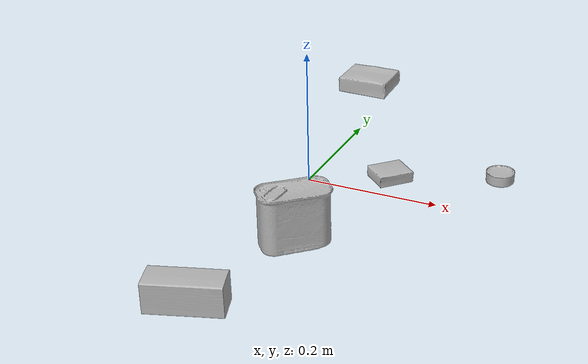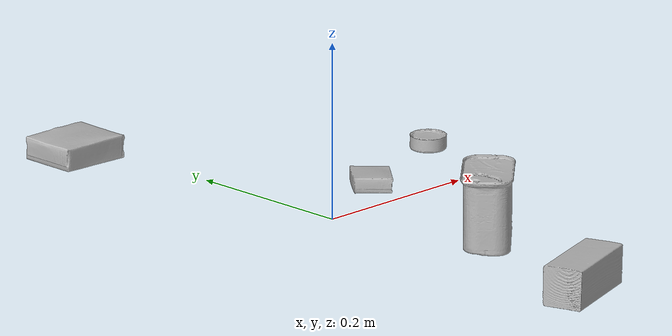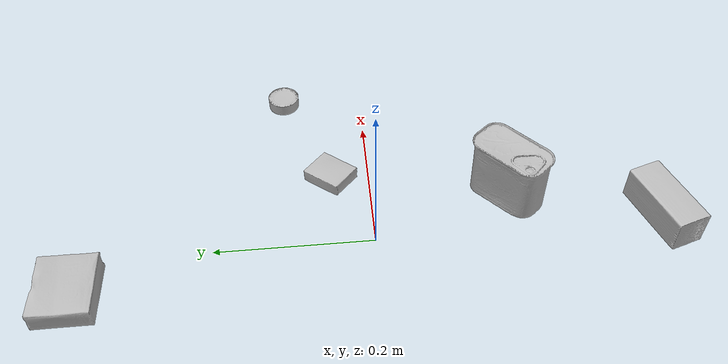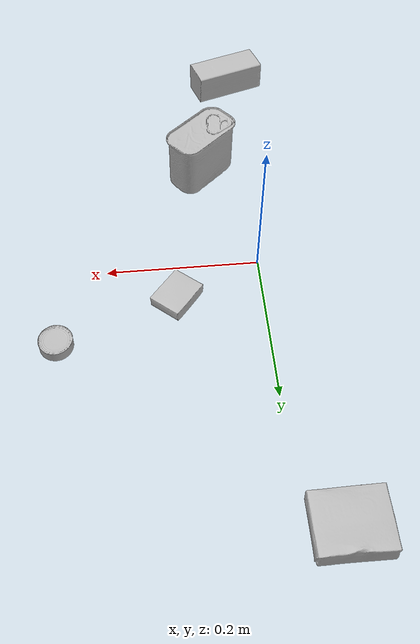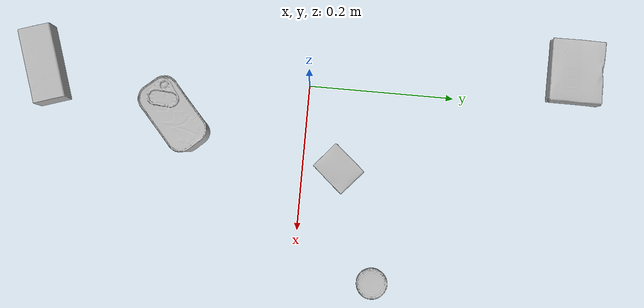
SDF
<sdf version="1.4">
  <world name="default">
    <light name="light1" type="point">
      <pose>0 0 1 0 0 0</pose>
      <diffuse>3 3 3 1</diffuse>
      <specular>3 3 3 1</specular>
    </light>
    <light name="light2" type="point">
      <pose>0 0.5 2 0 0 0</pose>
      <diffuse>1 1 1 1</diffuse>
      <specular>1 1 1 1</specular>
    </light>
    <light name="light3" type="point">
      <pose>0 0.5 2 0 0 0</pose>
      <diffuse>3 3 3 1</diffuse>
      <specular>3 3 3 1</specular>
    </light>
    <scene>
      <ambient>0.7 0.7 0.7</ambient>
    </scene>
    <model name="box1">
      <link name="link_box1">
        <collision name="default">
          <geometry>
            <mesh>
              <uri>model://pudding_box/collision_meshes/collision.obj</uri>
              <scale>0.5 0.5 0.5</scale>
            </mesh>
          </geometry>
          <surface>
            <friction>
              <ode>
                <mu>0.5</mu>
                <mu2>0.5</mu2>
              </ode>
            </friction>
          <contact>
        <ode>
            <max_vel>0</max_vel>
            <min_depth>0.0001</min_depth>
            <kp>1e8</kp>
        </ode>
    </contact></surface>
        </collision>
        <visual name="default">
          <geometry>
            <mesh>
              <uri>model://pudding_box/visual_meshes/visual.dae</uri>
              <scale>0.5 0.5 0.5</scale>
            </mesh>
          </geometry>
        </visual>
        <inertial>
          <mass>0.037190694361925125</mass>
          <pose>0.00024474109522998333 0.00040339428232982755 -0.0002594413817860186 0.005213101817299687 -0.0066037968510836995 0.02007982330137587</pose>
          <inertia>
            <ixx>1.0510541e-05</ixx>
            <iyy>7.071568e-06</iyy>
            <izz>1.552156e-05</izz>
            <ixy>0</ixy>
            <ixz>0</ixz>
            <iyz>0</iyz>
          </inertia>
        </inertial>
      </link>
      <pose>0.11102957278490067 0.0496210977435112 0.009862899780273438 0.022348345193641584 -0.011391839020455695 2.4249343908213308</pose>
    </model>
    <model name="box2">
      <link name="link_box2">
        <collision name="default">
          <geometry>
            <mesh>
              <uri>model://gelatin_box/collision_meshes/collision.obj</uri>
              <scale>1.0 1.0 1.0</scale>
            </mesh>
          </geometry>
          <surface>
            <friction>
              <ode>
                <mu>0.5</mu>
                <mu2>0.5</mu2>
              </ode>
            </friction>
          <contact>
        <ode>
            <max_vel>0</max_vel>
            <min_depth>0.0001</min_depth>
            <kp>1e8</kp>
        </ode>
    </contact></surface>
        </collision>
        <visual name="default">
          <geometry>
            <mesh>
              <uri>model://gelatin_box/visual_meshes/visual.dae</uri>
              <scale>1.0 1.0 1.0</scale>
            </mesh>
          </geometry>
        </visual>
        <inertial>
          <mass>0.11744645982980728</mass>
          <pose>0.0004319618456065655 0.00011156871914863586 -0.0003640321083366871 -0.001050371865231848 -0.004755818223747806 0.01644056319675078</pose>
          <inertia>
            <ixx>8.290762e-05</ixx>
            <iyy>5.9220478e-05</iyy>
            <izz>0.00012620387</izz>
            <ixy>0</ixy>
            <ixz>0</ixz>
            <iyz>0</iyz>
          </inertia>
        </inertial>
      </link>
      <pose>-0.049960099160671234 0.3630896508693695 0.015168312005698681 0.005597426646423097 -0.007304480872885908 1.563995070912565</pose>
    </model>
    <model name="box3">
      <link name="link_box3">
        <collision name="default">
          <geometry>
            <mesh>
              <uri>model://wood_block/collision_meshes/collision.obj</uri>
              <scale>0.5 0.5 0.5</scale>
            </mesh>
          </geometry>
          <surface>
            <friction>
              <ode>
                <mu>0.5</mu>
                <mu2>0.5</mu2>
              </ode>
            </friction>
          <contact>
        <ode>
            <max_vel>0</max_vel>
            <min_depth>0.0001</min_depth>
            <kp>1e8</kp>
        </ode>
    </contact></surface>
        </collision>
        <visual name="default">
          <geometry>
            <mesh>
              <uri>model://wood_block/visual_meshes/visual.dae</uri>
              <scale>0.5 0.5 0.5</scale>
            </mesh>
          </geometry>
        </visual>
        <inertial>
          <mass>0.2439567744731903</mass>
          <pose>-2.906657982748584e-06 -0.00028540476341731846 0.00013204292918089777 -0.05220841280222248 -0.00519269633387802 -0.006861376952924709</pose>
          <inertia>
            <ixx>8.161277e-05</ixx>
            <iyy>0.00025781477</iyy>
            <izz>0.0002568504</izz>
            <ixy>0</ixy>
            <ixz>0</ixz>
            <iyz>0</iyz>
          </inertia>
        </inertial>
      </link>
      <pose>0.00453044380992651 -0.36344343423843384 0.0226292684674263 -0.005208472114859912 0.005718726266259592 -2.8332541130804283</pose>
    </model>
    <model name="can1">
      <link name="link_can1">
        <collision name="default">
          <geometry>
            <mesh>
              <uri>model://tuna_fish_can/collision_meshes/collision.obj</uri>
              <scale>0.5 0.5 0.5</scale>
            </mesh>
          </geometry>
          <surface>
            <friction>
              <ode>
                <mu>0.5</mu>
                <mu2>0.5</mu2>
              </ode>
            </friction>
          <contact>
        <ode>
            <max_vel>0</max_vel>
            <min_depth>0.0001</min_depth>
            <kp>1e8</kp>
        </ode>
    </contact></surface>
        </collision>
        <visual name="default">
          <geometry>
            <mesh>
              <uri>model://tuna_fish_can/visual_meshes/visual.dae</uri>
              <scale>0.5 0.5 0.5</scale>
            </mesh>
          </geometry>
        </visual>
        <inertial>
          <mass>0.02880808152258396</mass>
          <pose>-2.036173827946186e-05 -7.256211574713234e-06 -0.0005269025568850338 -0.0017944794030227106 0.00017162104037918286 0.24054189207372795</pose>
          <inertia>
            <ixx>3.894896e-06</ixx>
            <iyy>3.878662e-06</iyy>
            <izz>6.6647226e-06</izz>
            <ixy>0</ixy>
            <ixz>0</ixz>
            <iyz>0</iyz>
          </inertia>
        </inertial>
      </link>
      <pose>0.26370900869369507 0.10828113555908203 0.00851999968290329 3.4214220248311524e-09 -6.488858689856106e-10 0.584172136188131</pose>
    </model>
    <model name="can2">
      <link name="link_can2">
        <collision name="default">
          <geometry>
            <mesh>
              <uri>model://potted_meat_can/collision_meshes/collision.obj</uri>
              <scale>1.0 1.0 1.0</scale>
            </mesh>
          </geometry>
          <surface>
            <friction>
              <ode>
                <mu>0.5</mu>
                <mu2>0.5</mu2>
              </ode>
            </friction>
          <contact>
        <ode>
            <max_vel>0</max_vel>
            <min_depth>0.0001</min_depth>
            <kp>1e8</kp>
        </ode>
    </contact></surface>
        </collision>
        <visual name="default">
          <geometry>
            <mesh>
              <uri>model://potted_meat_can/visual_meshes/visual.dae</uri>
              <scale>1.0 1.0 1.0</scale>
            </mesh>
          </geometry>
        </visual>
        <inertial>
          <mass>0.21485549211502075</mass>
          <pose>0.00022888135572429746 -5.989110650261864e-05 -0.0006367442547343671 -0.028093358319385277 -0.007232601893117688 0.015406275523281094</pose>
          <inertia>
            <ixx>0.00027638907</ixx>
            <iyy>0.00016792737</iyy>
            <izz>0.00020102048</izz>
            <ixy>0</ixy>
            <ixz>0</ixz>
            <iyz>0</iyz>
          </inertia>
        </inertial>
      </link>
      <pose>0.060057446360588074 -0.17522452771663666 0.04212801158428192 1.924858622405374e-08 -3.9590694161420394e-07 -0.8641734577811985</pose>
    </model>
  <physics type="ode">
      <max_contacts>50</max_contacts>
      <ode>
        <solver>
          <type>quick</type>
          <iters>75</iters>
        </solver>
        <constraints>
          <contact_max_correcting_vel>0</contact_max_correcting_vel>
          <contact_surface_layer>0</contact_surface_layer>
        </constraints>
      </ode>
    </physics></world>
</sdf>
